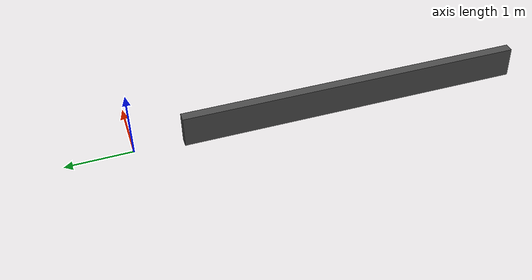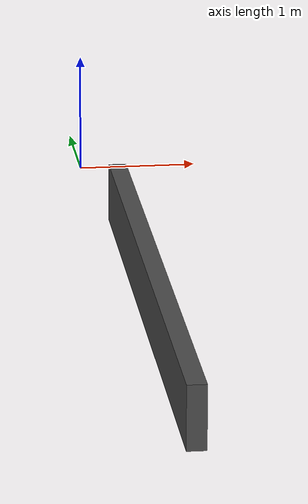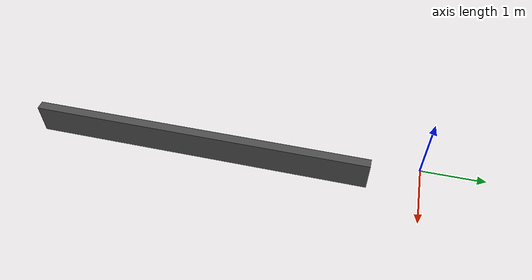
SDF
<?xml version='1.0'?>
<sdf version='1.7'>
  <model name='parede_5m5'>
    <pose>0.711496 -3.02246 0 0 -0 0</pose>
    <link name='Wall_10'>
      <collision name='Wall_10_Collision'>
        <geometry>
          <box>
            <size>5.5 0.15 0.5</size>
          </box>
        </geometry>
        <pose>0 0 0 0 -0 0</pose>
      </collision>
      <visual name='Wall_10_Visual'>
        <pose>0 0 0 0 -0 0</pose>
        <geometry>
          <box>
            <size>5.5 0.15 0.5</size>
          </box>
        </geometry>
        <material>
          <script>
            <uri>file://media/materials/scripts/gazebo.material</uri>
            <name>Gazebo/DarkGrey</name>
          </script>
          <ambient>1 1 1 1</ambient>
        </material>
        <meta>
          <layer>0</layer>
        </meta>
      </visual>
      <pose>-0.5 -0.5 0 0 0 -1.58</pose>
    </link>
    <static>1</static>
  </model>
</sdf>
